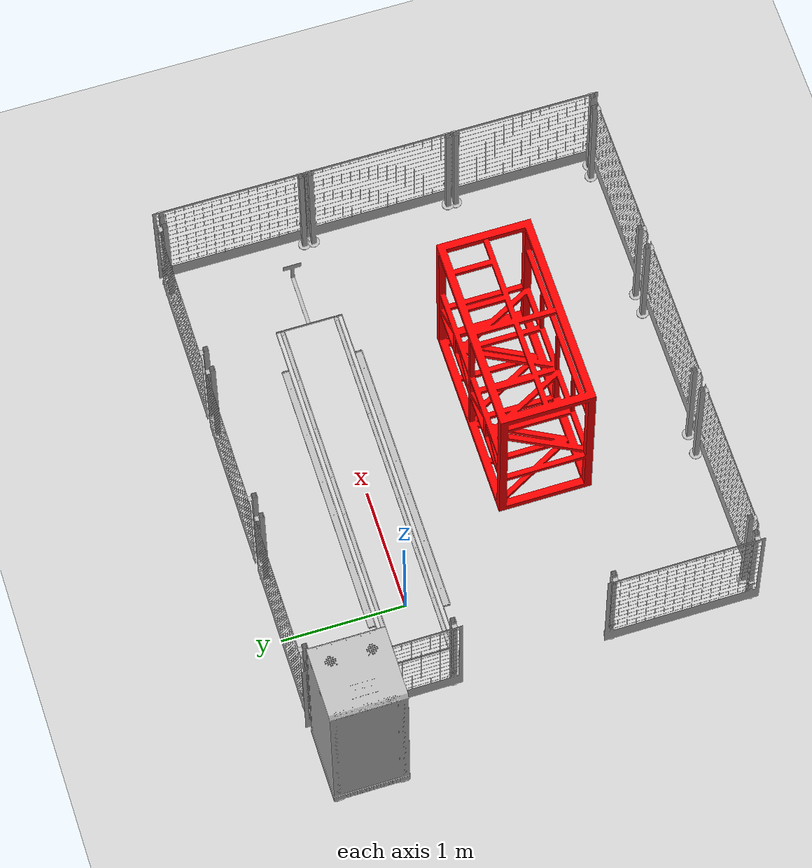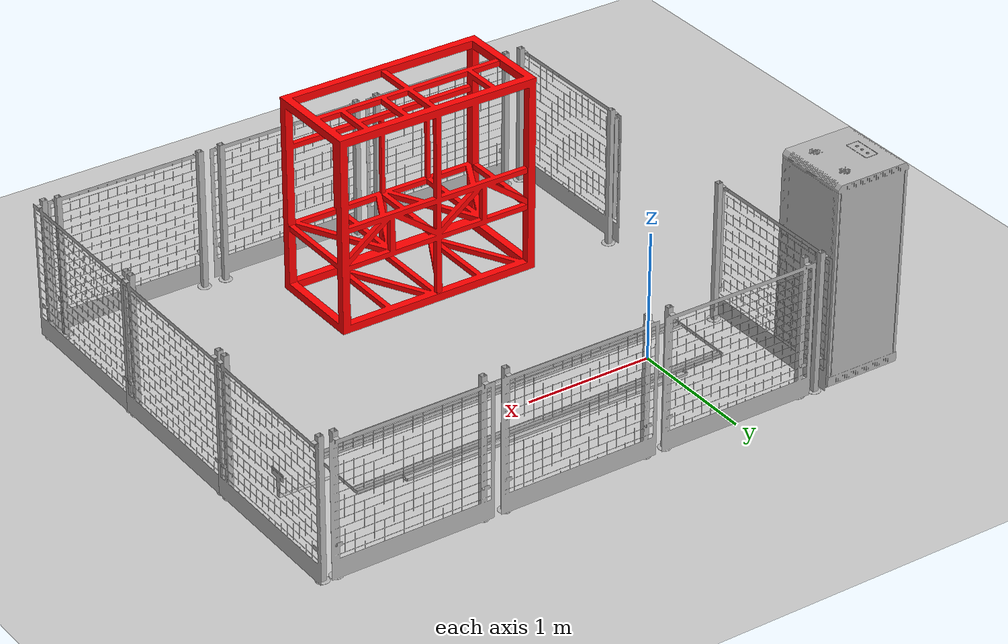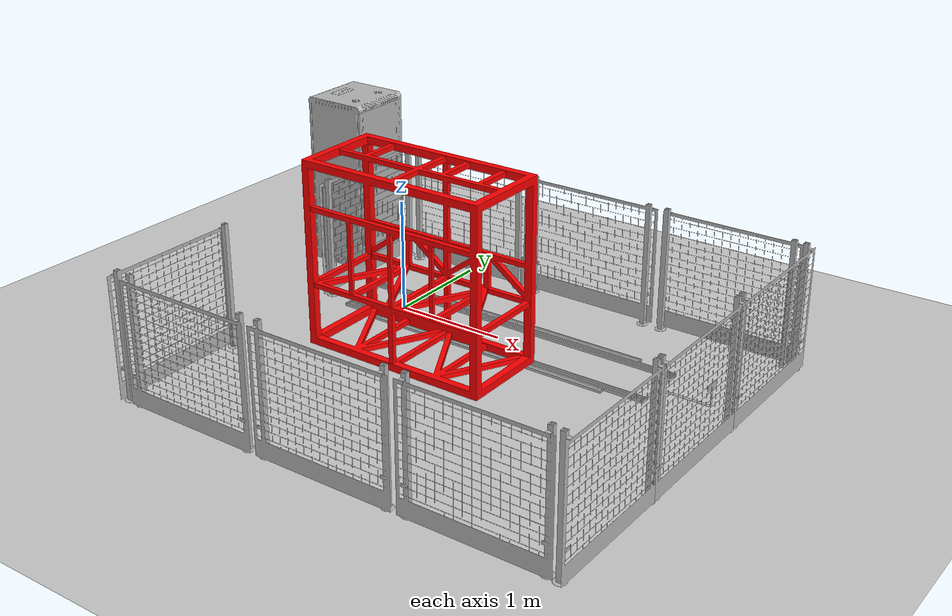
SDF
<sdf version="1.7">
 <world name="default">
  <light name="sun" type="directional">
   <pose>0 0 10 0 -0 0</pose>
   <diffuse>0.8 0.8 0.8 1</diffuse>
   <specular>0.2 0.2 0.2 1</specular>
   <attenuation>
    <range>1000</range>
    <constant>0.9</constant>
    <linear>0.01</linear>
    <quadratic>0.001</quadratic>
   </attenuation>
   <direction>-0.5 0.1 -0.9</direction>
   <spot><inner_angle>0</inner_angle><outer_angle>0</outer_angle><falloff>0</falloff></spot>
  </light>
  <model name="ground_plane">
   <static>1</static>
   <link name="link">
    <collision name="collision">
     <geometry><plane><normal>0 0 1</normal><size>100 100</size></plane></geometry>
     <surface>
      <contact><collide_bitmask>65535</collide_bitmask></contact>
      <friction><ode><mu>100</mu><mu2>50</mu2></ode></friction>
     </surface>
    </collision>
    <visual name="visual">
     <cast_shadows>0</cast_shadows>
     <geometry><plane><normal>0 0 1</normal><size>100 100</size></plane></geometry>
     <material>
      <script><uri>file://media/materials/scripts/gazebo.material</uri><name>Gazebo/Grey</name></script>
     </material>
    </visual>
   </link>
  </model>
  <gravity>0 0 -9.8</gravity>
  <magnetic_field>6e-06 2.3e-05 -4.2e-05</magnetic_field>
  <atmosphere type="adiabatic"/>
  <physics type="ode">
   <max_step_size>0.001</max_step_size>
   <real_time_factor>1</real_time_factor>
   <real_time_update_rate>1000</real_time_update_rate>
  </physics>
  <scene><ambient>0.4 0.4 0.4 1</ambient><background>0.7 0.7 0.7 1</background><shadows>1</shadows></scene>
  <spherical_coordinates>
   <surface_model>EARTH_WGS84</surface_model>
   <latitude_deg>0</latitude_deg>
   <longitude_deg>0</longitude_deg>
   <elevation>0</elevation>
   <heading_deg>0</heading_deg>
  </spherical_coordinates>
  <model name="ifarlab_ray">
   <link name="link_0">
    <inertial>
     <mass>1</mass>
     <inertia>
      <ixx>0.166667</ixx>
      <ixy>0</ixy>
      <ixz>0</ixz>
      <iyy>0.166667</iyy>
      <iyz>0</iyz>
      <izz>0.166667</izz>
     </inertia>
    </inertial>
    <visual name="visual">
     <pose>0.4 -1.28 0 0 -0 0</pose>
     <geometry>
      <mesh><uri>model://ifarlab_ray/model/ifarlab_ray.stl</uri><scale>0.001 0.001 0.001</scale></mesh>
     </geometry>
    </visual>
    <collision name="collision">
     <pose>0.4 -1.28 0 0 -0 0</pose>
     <geometry>
      <mesh><uri>model://ifarlab_ray/model/ifarlab_ray.stl</uri><scale>0.001 0.001 0.001</scale></mesh>
     </geometry>
     <surface>
      <friction>
       <ode><mu>1</mu><mu2>1</mu2><fdir1>0 0 0</fdir1><slip1>0</slip1><slip2>0</slip2></ode>
       <torsional>
        <coefficient>1</coefficient>
        <patch_radius>0</patch_radius>
        <surface_radius>0</surface_radius>
        <use_patch_radius>1</use_patch_radius>
        <ode><slip>0</slip></ode>
       </torsional>
      </friction>
      <bounce><restitution_coefficient>0</restitution_coefficient><threshold>1e+06</threshold></bounce>
      <contact>
       <collide_without_contact>0</collide_without_contact>
       <collide_without_contact_bitmask>1</collide_without_contact_bitmask>
       <collide_bitmask>1</collide_bitmask>
       <ode>
        <soft_cfm>0</soft_cfm>
        <soft_erp>0.2</soft_erp>
        <kp>1e+13</kp>
        <kd>1</kd>
        <max_vel>0.01</max_vel>
        <min_depth>0</min_depth>
       </ode>
       <bullet>
        <split_impulse>1</split_impulse>
        <split_impulse_penetration_threshold>-0.01</split_impulse_penetration_threshold>
        <soft_cfm>0</soft_cfm>
        <soft_erp>0.2</soft_erp>
        <kp>1e+13</kp>
        <kd>1</kd>
       </bullet>
      </contact>
     </surface>
    </collision>
   </link>
   <static>1</static>
   <pose>1.28 5e-06 -0 0 -0 1.5708</pose>
  </model>
  <model name="light_curtain">
   <link name="link_0">
    <inertial>
     <mass>1</mass>
     <inertia>
      <ixx>0.166667</ixx>
      <ixy>0</ixy>
      <ixz>0</ixz>
      <iyy>0.166667</iyy>
      <iyz>0</iyz>
      <izz>0.166667</izz>
     </inertia>
    </inertial>
    <visual name="visual">
     <pose>-0.92725 1.7723 0 0 -0 0</pose>
     <geometry>
      <mesh><uri>model://light_curtain/model/light_curtain.stl</uri><scale>0.001 0.001 0.001</scale></mesh>
     </geometry>
    </visual>
    <collision name="collision">
     <pose>-0.92725 1.7723 0 0 -0 0</pose>
     <geometry>
      <mesh><uri>model://light_curtain/model/light_curtain.stl</uri><scale>0.001 0.001 0.001</scale></mesh>
     </geometry>
     <surface>
      <friction>
       <ode><mu>1</mu><mu2>1</mu2><fdir1>0 0 0</fdir1><slip1>0</slip1><slip2>0</slip2></ode>
       <torsional>
        <coefficient>1</coefficient>
        <patch_radius>0</patch_radius>
        <surface_radius>0</surface_radius>
        <use_patch_radius>1</use_patch_radius>
        <ode><slip>0</slip></ode>
       </torsional>
      </friction>
      <bounce><restitution_coefficient>0</restitution_coefficient><threshold>1e+06</threshold></bounce>
      <contact>
       <collide_without_contact>0</collide_without_contact>
       <collide_without_contact_bitmask>1</collide_without_contact_bitmask>
       <collide_bitmask>1</collide_bitmask>
       <ode>
        <soft_cfm>0</soft_cfm>
        <soft_erp>0.2</soft_erp>
        <kp>1e+13</kp>
        <kd>1</kd>
        <max_vel>0.01</max_vel>
        <min_depth>0</min_depth>
       </ode>
       <bullet>
        <split_impulse>1</split_impulse>
        <split_impulse_penetration_threshold>-0.01</split_impulse_penetration_threshold>
        <soft_cfm>0</soft_cfm>
        <soft_erp>0.2</soft_erp>
        <kp>1e+13</kp>
        <kd>1</kd>
       </bullet>
      </contact>
     </surface>
    </collision>
    <sensor name="ir" type="ray">
     <pose>-0.605 0 0.22 0 -0 0</pose>
     <ray>
      <scan>
       <horizontal>
        <min_angle>-0.001</min_angle>
        <max_angle>0.001</max_angle>
        <samples>640</samples>
        <resolution>1</resolution>
       </horizontal>
       <vertical><samples>1</samples><min_angle>0</min_angle><max_angle>0</max_angle></vertical>
      </scan>
      <range><min>0.001</min><max>1.213</max></range>
     </ray>
     <plugin name="gazebo_ros_range" filename="libgazebo_ros_range.so">
      <topicName>ir</topicName>
      <frameName>link</frameName>
      <frameId>link</frameId>
      <radiation>infrared</radiation>
     </plugin>
     <always_on>1</always_on>
     <update_rate>10</update_rate>
     <visualize>1</visualize>
    </sensor>
    <sensor name="ir1" type="ray">
     <pose>-0.605 0 0.32 0 -0 0</pose>
     <ray>
      <scan>
       <horizontal>
        <min_angle>-0.001</min_angle>
        <max_angle>0.001</max_angle>
        <samples>640</samples>
        <resolution>1</resolution>
       </horizontal>
       <vertical><samples>1</samples><min_angle>0</min_angle><max_angle>0</max_angle></vertical>
      </scan>
      <range><min>0.001</min><max>1.213</max><resolution>0.001</resolution></range>
     </ray>
     <plugin name="gazebo_ros_range" filename="libgazebo_ros_range.so">
      <topicName>ir1</topicName>
      <frameName>link</frameName>
      <frameId>link</frameId>
      <radiation>infrared</radiation>
     </plugin>
     <always_on>1</always_on>
     <update_rate>10</update_rate>
     <visualize>1</visualize>
    </sensor>
    <sensor name="ir2" type="ray">
     <pose>-0.605 0 0.42 0 -0 0</pose>
     <ray>
      <scan>
       <horizontal>
        <min_angle>-0.001</min_angle>
        <max_angle>0.001</max_angle>
        <samples>640</samples>
        <resolution>1</resolution>
       </horizontal>
       <vertical><samples>1</samples><min_angle>0</min_angle><max_angle>0</max_angle></vertical>
      </scan>
      <range><min>0.001</min><max>1.213</max><resolution>0.001</resolution></range>
     </ray>
     <plugin name="gazebo_ros_range" filename="libgazebo_ros_range.so">
      <topicName>ir2</topicName>
      <frameName>link</frameName>
      <frameId>link</frameId>
      <radiation>infrared</radiation>
     </plugin>
     <always_on>1</always_on>
     <update_rate>10</update_rate>
     <visualize>1</visualize>
    </sensor>
    <sensor name="ir3" type="ray">
     <pose>-0.605 0 0.52 0 -0 0</pose>
     <ray>
      <scan>
       <horizontal>
        <samples>320</samples>
        <resolution>1</resolution>
        <min_angle>-0.001</min_angle>
        <max_angle>0.001</max_angle>
       </horizontal>
       <vertical><samples>1</samples><min_angle>0</min_angle><max_angle>0</max_angle></vertical>
      </scan>
      <range><min>0.001</min><max>1.213</max><resolution>0.001</resolution></range>
     </ray>
     <plugin name="gazebo_ros_range" filename="libgazebo_ros_range.so">
      <topicName>ir3</topicName>
      <frameName>link</frameName>
      <frameId>link</frameId>
      <radiation>infrared</radiation>
     </plugin>
     <always_on>1</always_on>
     <update_rate>10</update_rate>
     <visualize>1</visualize>
    </sensor>
    <sensor name="ir4" type="ray">
     <pose>-0.605 0 0.62 0 -0 0</pose>
     <ray>
      <scan>
       <horizontal>
        <min_angle>-0.001</min_angle>
        <max_angle>0.001</max_angle>
        <samples>640</samples>
        <resolution>1</resolution>
       </horizontal>
       <vertical><samples>1</samples><min_angle>0</min_angle><max_angle>0</max_angle></vertical>
      </scan>
      <range><min>0.001</min><max>1.213</max><resolution>0.001</resolution></range>
     </ray>
     <plugin name="gazebo_ros_range" filename="libgazebo_ros_range.so">
      <topicName>ir4</topicName>
      <frameName>link</frameName>
      <frameId>link</frameId>
      <radiation>infrared</radiation>
     </plugin>
     <always_on>1</always_on>
     <update_rate>10</update_rate>
     <visualize>1</visualize>
    </sensor>
    <sensor name="ir5" type="ray">
     <pose>-0.605 0 0.72 0 -0 0</pose>
     <ray>
      <scan>
       <horizontal>
        <min_angle>-0.001</min_angle>
        <max_angle>0.001</max_angle>
        <samples>640</samples>
        <resolution>1</resolution>
       </horizontal>
       <vertical><samples>1</samples><min_angle>0</min_angle><max_angle>0</max_angle></vertical>
      </scan>
      <range><min>0.001</min><max>1.213</max><resolution>0.001</resolution></range>
     </ray>
     <plugin name="gazebo_ros_range" filename="libgazebo_ros_range.so">
      <topicName>ir5</topicName>
      <frameName>link</frameName>
      <frameId>link</frameId>
      <radiation>infrared</radiation>
     </plugin>
     <always_on>1</always_on>
     <update_rate>10</update_rate>
     <visualize>1</visualize>
    </sensor>
    <sensor name="ir6" type="ray">
     <pose>-0.605 0 0.82 0 -0 0</pose>
     <ray>
      <scan>
       <horizontal>
        <min_angle>-0.001</min_angle>
        <max_angle>0.001</max_angle>
        <samples>640</samples>
        <resolution>1</resolution>
       </horizontal>
       <vertical><samples>1</samples><min_angle>0</min_angle><max_angle>0</max_angle></vertical>
      </scan>
      <range><min>0.001</min><max>1.213</max><resolution>0.001</resolution></range>
     </ray>
     <plugin name="gazebo_ros_range" filename="libgazebo_ros_range.so">
      <topicName>ir6</topicName>
      <frameName>link</frameName>
      <frameId>link</frameId>
      <radiation>infrared</radiation>
     </plugin>
     <always_on>1</always_on>
     <update_rate>10</update_rate>
     <visualize>1</visualize>
    </sensor>
    <sensor name="ir7" type="ray">
     <pose>-0.605 0 0.92 0 -0 0</pose>
     <ray>
      <scan>
       <horizontal>
        <min_angle>-0.001</min_angle>
        <max_angle>0.001</max_angle>
        <samples>640</samples>
        <resolution>1</resolution>
       </horizontal>
       <vertical><samples>1</samples><min_angle>0</min_angle><max_angle>0</max_angle></vertical>
      </scan>
      <range><min>0.001</min><max>1.213</max><resolution>0.001</resolution></range>
     </ray>
     <plugin name="gazebo_ros_range" filename="libgazebo_ros_range.so">
      <topicName>ir7</topicName>
      <frameName>link</frameName>
      <frameId>link</frameId>
      <radiation>infrared</radiation>
     </plugin>
     <always_on>1</always_on>
     <update_rate>10</update_rate>
     <visualize>1</visualize>
    </sensor>
    <sensor name="ir8" type="ray">
     <pose>-0.605 0 1.02 0 -0 0</pose>
     <ray>
      <scan>
       <horizontal>
        <min_angle>-0.001</min_angle>
        <max_angle>0.001</max_angle>
        <samples>640</samples>
        <resolution>1</resolution>
       </horizontal>
       <vertical><samples>1</samples><min_angle>0</min_angle><max_angle>0</max_angle></vertical>
      </scan>
      <range><min>0.001</min><max>1.213</max><resolution>0.001</resolution></range>
     </ray>
     <plugin name="gazebo_ros_range" filename="libgazebo_ros_range.so">
      <topicName>ir8</topicName>
      <frameName>link</frameName>
      <frameId>link</frameId>
      <radiation>infrared</radiation>
     </plugin>
     <always_on>1</always_on>
     <update_rate>10</update_rate>
     <visualize>1</visualize>
    </sensor>
   </link>
   <static>1</static>
   <pose>-0.726743 -0.78522 0 0 0 -1.5708</pose>
  </model>
  <model name="kabinet">
   <link name="link_0">
    <inertial>
     <mass>1</mass>
     <inertia>
      <ixx>0.166667</ixx>
      <ixy>0</ixy>
      <ixz>0</ixz>
      <iyy>0.166667</iyy>
      <iyz>0</iyz>
      <izz>0.166667</izz>
     </inertia>
    </inertial>
    <visual name="visual">
     <pose>0.7 -3.7 0 0 -0 0</pose>
     <geometry>
      <mesh><uri>model://kabinet/model/Kabinet.stl</uri><scale>0.001 0.001 0.00125</scale></mesh>
     </geometry>
    </visual>
    <collision name="collision">
     <pose>0.7 3.7 0 0 -0 0</pose>
     <geometry>
      <mesh><uri>model://kabinet/model/Kabinet.stl</uri><scale>0.001 0.001 0.00125</scale></mesh>
     </geometry>
     <surface>
      <friction>
       <ode><mu>1</mu><mu2>1</mu2><fdir1>0 0 0</fdir1><slip1>0</slip1><slip2>0</slip2></ode>
       <torsional>
        <coefficient>1</coefficient>
        <patch_radius>0</patch_radius>
        <surface_radius>0</surface_radius>
        <use_patch_radius>1</use_patch_radius>
        <ode><slip>0</slip></ode>
       </torsional>
      </friction>
      <bounce><restitution_coefficient>0</restitution_coefficient><threshold>1e+06</threshold></bounce>
      <contact>
       <collide_without_contact>0</collide_without_contact>
       <collide_without_contact_bitmask>1</collide_without_contact_bitmask>
       <collide_bitmask>1</collide_bitmask>
       <ode>
        <soft_cfm>0</soft_cfm>
        <soft_erp>0.2</soft_erp>
        <kp>1e+13</kp>
        <kd>1</kd>
        <max_vel>0.01</max_vel>
        <min_depth>0</min_depth>
       </ode>
       <bullet>
        <split_impulse>1</split_impulse>
        <split_impulse_penetration_threshold>-0.01</split_impulse_penetration_threshold>
        <soft_cfm>0</soft_cfm>
        <soft_erp>0.2</soft_erp>
        <kp>1e+13</kp>
        <kd>1</kd>
       </bullet>
      </contact>
     </surface>
    </collision>
   </link>
   <static>1</static>
   <pose>-1.1 0.742257 0 0 -0 3.14159</pose>
  </model>
  <model name="barrier">
   <link name="link_0">
    <inertial>
     <mass>1</mass>
     <inertia>
      <ixx>0.166667</ixx>
      <ixy>0</ixy>
      <ixz>0</ixz>
      <iyy>0.166667</iyy>
      <iyz>0</iyz>
      <izz>0.166667</izz>
     </inertia>
    </inertial>
    <visual name="visual">
     <pose>1.085 0.4 0 0 -0 0</pose>
     <geometry><mesh><uri>model://barrier/model/barrier.stl</uri><scale>0.001 0.001 0.001</scale></mesh></geometry>
    </visual>
    <collision name="collision">
     <pose>1.085 0.4 0 0 -0 0</pose>
     <geometry><mesh><uri>model://barrier/model/barrier.stl</uri><scale>0.001 0.001 0.001</scale></mesh></geometry>
     <surface>
      <friction>
       <ode><mu>1</mu><mu2>1</mu2><fdir1>0 0 0</fdir1><slip1>0</slip1><slip2>0</slip2></ode>
       <torsional>
        <coefficient>1</coefficient>
        <patch_radius>0</patch_radius>
        <surface_radius>0</surface_radius>
        <use_patch_radius>1</use_patch_radius>
        <ode><slip>0</slip></ode>
       </torsional>
      </friction>
      <bounce><restitution_coefficient>0</restitution_coefficient><threshold>1e+06</threshold></bounce>
      <contact>
       <collide_without_contact>0</collide_without_contact>
       <collide_without_contact_bitmask>1</collide_without_contact_bitmask>
       <collide_bitmask>1</collide_bitmask>
       <ode>
        <soft_cfm>0</soft_cfm>
        <soft_erp>0.2</soft_erp>
        <kp>1e+13</kp>
        <kd>1</kd>
        <max_vel>0.01</max_vel>
        <min_depth>0</min_depth>
       </ode>
       <bullet>
        <split_impulse>1</split_impulse>
        <split_impulse_penetration_threshold>-0.01</split_impulse_penetration_threshold>
        <soft_cfm>0</soft_cfm>
        <soft_erp>0.2</soft_erp>
        <kp>1e+13</kp>
        <kd>1</kd>
       </bullet>
      </contact>
     </surface>
    </collision>
   </link>
   <static>1</static>
   <pose>3.26 0.388652 0 0 -0 1.5708</pose>
  </model>
  <model name="barrier_0">
   <link name="link_0">
    <inertial>
     <mass>1</mass>
     <inertia>
      <ixx>0.166667</ixx>
      <ixy>0</ixy>
      <ixz>0</ixz>
      <iyy>0.166667</iyy>
      <iyz>0</iyz>
      <izz>0.166667</izz>
     </inertia>
    </inertial>
    <visual name="visual">
     <pose>1.085 0.4 0 0 -0 0</pose>
     <geometry><mesh><uri>model://barrier/model/barrier.stl</uri><scale>0.001 0.001 0.001</scale></mesh></geometry>
    </visual>
    <collision name="collision">
     <pose>1.085 0.4 0 0 -0 0</pose>
     <geometry><mesh><uri>model://barrier/model/barrier.stl</uri><scale>0.001 0.001 0.001</scale></mesh></geometry>
     <surface>
      <friction>
       <ode><mu>1</mu><mu2>1</mu2><fdir1>0 0 0</fdir1><slip1>0</slip1><slip2>0</slip2></ode>
       <torsional>
        <coefficient>1</coefficient>
        <patch_radius>0</patch_radius>
        <surface_radius>0</surface_radius>
        <use_patch_radius>1</use_patch_radius>
        <ode><slip>0</slip></ode>
       </torsional>
      </friction>
      <bounce><restitution_coefficient>0</restitution_coefficient><threshold>1e+06</threshold></bounce>
      <contact>
       <collide_without_contact>0</collide_without_contact>
       <collide_without_contact_bitmask>1</collide_without_contact_bitmask>
       <collide_bitmask>1</collide_bitmask>
       <ode>
        <soft_cfm>0</soft_cfm>
        <soft_erp>0.2</soft_erp>
        <kp>1e+13</kp>
        <kd>1</kd>
        <max_vel>0.01</max_vel>
        <min_depth>0</min_depth>
       </ode>
       <bullet>
        <split_impulse>1</split_impulse>
        <split_impulse_penetration_threshold>-0.01</split_impulse_penetration_threshold>
        <soft_cfm>0</soft_cfm>
        <soft_erp>0.2</soft_erp>
        <kp>1e+13</kp>
        <kd>1</kd>
       </bullet>
      </contact>
     </surface>
    </collision>
   </link>
   <static>1</static>
   <pose>3.26 -0.811401 0 0 -0 1.5708</pose>
  </model>
  <model name="barrier_1">
   <link name="link_0">
    <inertial>
     <mass>1</mass>
     <inertia>
      <ixx>0.166667</ixx>
      <ixy>0</ixy>
      <ixz>0</ixz>
      <iyy>0.166667</iyy>
      <iyz>0</iyz>
      <izz>0.166667</izz>
     </inertia>
    </inertial>
    <visual name="visual">
     <pose>1.085 0.4 0 0 -0 0</pose>
     <geometry><mesh><uri>model://barrier/model/barrier.stl</uri><scale>0.001 0.001 0.001</scale></mesh></geometry>
    </visual>
    <collision name="collision">
     <pose>1.085 0.4 0 0 -0 0</pose>
     <geometry><mesh><uri>model://barrier/model/barrier.stl</uri><scale>0.001 0.001 0.001</scale></mesh></geometry>
     <surface>
      <friction>
       <ode><mu>1</mu><mu2>1</mu2><fdir1>0 0 0</fdir1><slip1>0</slip1><slip2>0</slip2></ode>
       <torsional>
        <coefficient>1</coefficient>
        <patch_radius>0</patch_radius>
        <surface_radius>0</surface_radius>
        <use_patch_radius>1</use_patch_radius>
        <ode><slip>0</slip></ode>
       </torsional>
      </friction>
      <bounce><restitution_coefficient>0</restitution_coefficient><threshold>1e+06</threshold></bounce>
      <contact>
       <collide_without_contact>0</collide_without_contact>
       <collide_without_contact_bitmask>1</collide_without_contact_bitmask>
       <collide_bitmask>1</collide_bitmask>
       <ode>
        <soft_cfm>0</soft_cfm>
        <soft_erp>0.2</soft_erp>
        <kp>1e+13</kp>
        <kd>1</kd>
        <max_vel>0.01</max_vel>
        <min_depth>0</min_depth>
       </ode>
       <bullet>
        <split_impulse>1</split_impulse>
        <split_impulse_penetration_threshold>-0.01</split_impulse_penetration_threshold>
        <soft_cfm>0</soft_cfm>
        <soft_erp>0.2</soft_erp>
        <kp>1e+13</kp>
        <kd>1</kd>
       </bullet>
      </contact>
     </surface>
    </collision>
   </link>
   <static>1</static>
   <pose>3.26 -2 0 0 -0 1.5708</pose>
  </model>
  <model name="barrier_2">
   <link name="link_0">
    <inertial>
     <mass>1</mass>
     <inertia>
      <ixx>0.166667</ixx>
      <ixy>0</ixy>
      <ixz>0</ixz>
      <iyy>0.166667</iyy>
      <iyz>0</iyz>
      <izz>0.166667</izz>
     </inertia>
    </inertial>
    <visual name="visual">
     <pose>1.085 0.4 0 0 -0 0</pose>
     <geometry><mesh><uri>model://barrier/model/barrier.stl</uri><scale>0.001 0.001 0.001</scale></mesh></geometry>
    </visual>
    <collision name="collision">
     <pose>1.085 0.4 0 0 -0 0</pose>
     <geometry><mesh><uri>model://barrier/model/barrier.stl</uri><scale>0.001 0.001 0.001</scale></mesh></geometry>
     <surface>
      <friction>
       <ode><mu>1</mu><mu2>1</mu2><fdir1>0 0 0</fdir1><slip1>0</slip1><slip2>0</slip2></ode>
       <torsional>
        <coefficient>1</coefficient>
        <patch_radius>0</patch_radius>
        <surface_radius>0</surface_radius>
        <use_patch_radius>1</use_patch_radius>
        <ode><slip>0</slip></ode>
       </torsional>
      </friction>
      <bounce><restitution_coefficient>0</restitution_coefficient><threshold>1e+06</threshold></bounce>
      <contact>
       <collide_without_contact>0</collide_without_contact>
       <collide_without_contact_bitmask>1</collide_without_contact_bitmask>
       <collide_bitmask>1</collide_bitmask>
       <ode>
        <soft_cfm>0</soft_cfm>
        <soft_erp>0.2</soft_erp>
        <kp>1e+13</kp>
        <kd>1</kd>
        <max_vel>0.01</max_vel>
        <min_depth>0</min_depth>
       </ode>
       <bullet>
        <split_impulse>1</split_impulse>
        <split_impulse_penetration_threshold>-0.01</split_impulse_penetration_threshold>
        <soft_cfm>0</soft_cfm>
        <soft_erp>0.2</soft_erp>
        <kp>1e+13</kp>
        <kd>1</kd>
       </bullet>
      </contact>
     </surface>
    </collision>
   </link>
   <static>1</static>
   <pose>-0.69 0.404037 0 0 0 -1.5708</pose>
  </model>
  <model name="barrier_3">
   <link name="link_0">
    <inertial>
     <mass>1</mass>
     <inertia>
      <ixx>0.166667</ixx>
      <ixy>0</ixy>
      <ixz>0</ixz>
      <iyy>0.166667</iyy>
      <iyz>0</iyz>
      <izz>0.166667</izz>
     </inertia>
    </inertial>
    <visual name="visual">
     <pose>1.085 0.4 0 0 -0 0</pose>
     <geometry><mesh><uri>model://barrier/model/barrier.stl</uri><scale>0.001 0.001 0.001</scale></mesh></geometry>
    </visual>
    <collision name="collision">
     <pose>1.085 0.4 0 0 -0 0</pose>
     <geometry><mesh><uri>model://barrier/model/barrier.stl</uri><scale>0.001 0.001 0.001</scale></mesh></geometry>
     <surface>
      <friction>
       <ode><mu>1</mu><mu2>1</mu2><fdir1>0 0 0</fdir1><slip1>0</slip1><slip2>0</slip2></ode>
       <torsional>
        <coefficient>1</coefficient>
        <patch_radius>0</patch_radius>
        <surface_radius>0</surface_radius>
        <use_patch_radius>1</use_patch_radius>
        <ode><slip>0</slip></ode>
       </torsional>
      </friction>
      <bounce><restitution_coefficient>0</restitution_coefficient><threshold>1e+06</threshold></bounce>
      <contact>
       <collide_without_contact>0</collide_without_contact>
       <collide_without_contact_bitmask>1</collide_without_contact_bitmask>
       <collide_bitmask>1</collide_bitmask>
       <ode>
        <soft_cfm>0</soft_cfm>
        <soft_erp>0.2</soft_erp>
        <kp>1e+13</kp>
        <kd>1</kd>
        <max_vel>0.01</max_vel>
        <min_depth>0</min_depth>
       </ode>
       <bullet>
        <split_impulse>1</split_impulse>
        <split_impulse_penetration_threshold>-0.01</split_impulse_penetration_threshold>
        <soft_cfm>0</soft_cfm>
        <soft_erp>0.2</soft_erp>
        <kp>1e+13</kp>
        <kd>1</kd>
       </bullet>
      </contact>
     </surface>
    </collision>
   </link>
   <static>1</static>
   <pose>2.6 0.95 0 0 -0 3.14159</pose>
  </model>
  <model name="barrier_3_clone">
   <link name="link_0">
    <inertial>
     <mass>1</mass>
     <inertia>
      <ixx>0.166667</ixx>
      <ixy>0</ixy>
      <ixz>0</ixz>
      <iyy>0.166667</iyy>
      <iyz>0</iyz>
      <izz>0.166667</izz>
     </inertia>
    </inertial>
    <visual name="visual">
     <pose>1.085 0.4 0 0 -0 0</pose>
     <geometry><mesh><uri>model://barrier/model/barrier.stl</uri><scale>0.001 0.001 0.001</scale></mesh></geometry>
    </visual>
    <collision name="collision">
     <pose>1.085 0.4 0 0 -0 0</pose>
     <geometry><mesh><uri>model://barrier/model/barrier.stl</uri><scale>0.001 0.001 0.001</scale></mesh></geometry>
     <surface>
      <friction>
       <ode><mu>1</mu><mu2>1</mu2><fdir1>0 0 0</fdir1><slip1>0</slip1><slip2>0</slip2></ode>
       <torsional>
        <coefficient>1</coefficient>
        <patch_radius>0</patch_radius>
        <surface_radius>0</surface_radius>
        <use_patch_radius>1</use_patch_radius>
        <ode><slip>0</slip></ode>
       </torsional>
      </friction>
      <bounce><restitution_coefficient>0</restitution_coefficient><threshold>1e+06</threshold></bounce>
      <contact>
       <collide_without_contact>0</collide_without_contact>
       <collide_without_contact_bitmask>1</collide_without_contact_bitmask>
       <collide_bitmask>1</collide_bitmask>
       <ode>
        <soft_cfm>0</soft_cfm>
        <soft_erp>0.2</soft_erp>
        <kp>1e+13</kp>
        <kd>1</kd>
        <max_vel>0.01</max_vel>
        <min_depth>0</min_depth>
       </ode>
       <bullet>
        <split_impulse>1</split_impulse>
        <split_impulse_penetration_threshold>-0.01</split_impulse_penetration_threshold>
        <soft_cfm>0</soft_cfm>
        <soft_erp>0.2</soft_erp>
        <kp>1e+13</kp>
        <kd>1</kd>
       </bullet>
      </contact>
     </surface>
    </collision>
   </link>
   <static>1</static>
   <pose>1.3 0.95 0 0 -0 3.14159</pose>
  </model>
  <model name="barrier_3_clone_0">
   <link name="link_0">
    <inertial>
     <mass>1</mass>
     <inertia>
      <ixx>0.166667</ixx>
      <ixy>0</ixy>
      <ixz>0</ixz>
      <iyy>0.166667</iyy>
      <iyz>0</iyz>
      <izz>0.166667</izz>
     </inertia>
    </inertial>
    <visual name="visual">
     <pose>1.085 0.4 0 0 -0 0</pose>
     <geometry><mesh><uri>model://barrier/model/barrier.stl</uri><scale>0.001 0.001 0.001</scale></mesh></geometry>
    </visual>
    <collision name="collision">
     <pose>1.085 0.4 0 0 -0 0</pose>
     <geometry><mesh><uri>model://barrier/model/barrier.stl</uri><scale>0.001 0.001 0.001</scale></mesh></geometry>
     <surface>
      <friction>
       <ode><mu>1</mu><mu2>1</mu2><fdir1>0 0 0</fdir1><slip1>0</slip1><slip2>0</slip2></ode>
       <torsional>
        <coefficient>1</coefficient>
        <patch_radius>0</patch_radius>
        <surface_radius>0</surface_radius>
        <use_patch_radius>1</use_patch_radius>
        <ode><slip>0</slip></ode>
       </torsional>
      </friction>
      <bounce><restitution_coefficient>0</restitution_coefficient><threshold>1e+06</threshold></bounce>
      <contact>
       <collide_without_contact>0</collide_without_contact>
       <collide_without_contact_bitmask>1</collide_without_contact_bitmask>
       <collide_bitmask>1</collide_bitmask>
       <ode>
        <soft_cfm>0</soft_cfm>
        <soft_erp>0.2</soft_erp>
        <kp>1e+13</kp>
        <kd>1</kd>
        <max_vel>0.01</max_vel>
        <min_depth>0</min_depth>
       </ode>
       <bullet>
        <split_impulse>1</split_impulse>
        <split_impulse_penetration_threshold>-0.01</split_impulse_penetration_threshold>
        <soft_cfm>0</soft_cfm>
        <soft_erp>0.2</soft_erp>
        <kp>1e+13</kp>
        <kd>1</kd>
       </bullet>
      </contact>
     </surface>
    </collision>
   </link>
   <static>1</static>
   <pose>0 0.947469 0 0 -0 3.14158</pose>
  </model>
  <model name="barrier_4">
   <link name="link_0">
    <inertial>
     <mass>1</mass>
     <inertia>
      <ixx>0.166667</ixx>
      <ixy>0</ixy>
      <ixz>0</ixz>
      <iyy>0.166667</iyy>
      <iyz>0</iyz>
      <izz>0.166667</izz>
     </inertia>
    </inertial>
    <visual name="visual">
     <pose>1.085 0.4 0 0 -0 0</pose>
     <geometry><mesh><uri>model://barrier/model/barrier.stl</uri><scale>0.001 0.001 0.001</scale></mesh></geometry>
    </visual>
    <collision name="collision">
     <pose>1.085 0.4 0 0 -0 0</pose>
     <geometry><mesh><uri>model://barrier/model/barrier.stl</uri><scale>0.001 0.001 0.001</scale></mesh></geometry>
     <surface>
      <friction>
       <ode><mu>1</mu><mu2>1</mu2><fdir1>0 0 0</fdir1><slip1>0</slip1><slip2>0</slip2></ode>
       <torsional>
        <coefficient>1</coefficient>
        <patch_radius>0</patch_radius>
        <surface_radius>0</surface_radius>
        <use_patch_radius>1</use_patch_radius>
        <ode><slip>0</slip></ode>
       </torsional>
      </friction>
      <bounce><restitution_coefficient>0</restitution_coefficient><threshold>1e+06</threshold></bounce>
      <contact>
       <collide_without_contact>0</collide_without_contact>
       <collide_without_contact_bitmask>1</collide_without_contact_bitmask>
       <collide_bitmask>1</collide_bitmask>
       <ode>
        <soft_cfm>0</soft_cfm>
        <soft_erp>0.2</soft_erp>
        <kp>1e+13</kp>
        <kd>1</kd>
        <max_vel>0.01</max_vel>
        <min_depth>0</min_depth>
       </ode>
       <bullet>
        <split_impulse>1</split_impulse>
        <split_impulse_penetration_threshold>-0.01</split_impulse_penetration_threshold>
        <soft_cfm>0</soft_cfm>
        <soft_erp>0.2</soft_erp>
        <kp>1e+13</kp>
        <kd>1</kd>
       </bullet>
      </contact>
     </surface>
    </collision>
   </link>
   <static>1</static>
   <pose>0 -2.54 0 0 -0 0</pose>
  </model>
  <model name="barrier_4_clone">
   <link name="link_0">
    <inertial>
     <mass>1</mass>
     <inertia>
      <ixx>0.166667</ixx>
      <ixy>0</ixy>
      <ixz>0</ixz>
      <iyy>0.166667</iyy>
      <iyz>0</iyz>
      <izz>0.166667</izz>
     </inertia>
    </inertial>
    <visual name="visual">
     <pose>1.085 0.4 0 0 -0 0</pose>
     <geometry><mesh><uri>model://barrier/model/barrier.stl</uri><scale>0.001 0.001 0.001</scale></mesh></geometry>
    </visual>
    <collision name="collision">
     <pose>1.085 0.4 0 0 -0 0</pose>
     <geometry><mesh><uri>model://barrier/model/barrier.stl</uri><scale>0.001 0.001 0.001</scale></mesh></geometry>
     <surface>
      <friction>
       <ode><mu>1</mu><mu2>1</mu2><fdir1>0 0 0</fdir1><slip1>0</slip1><slip2>0</slip2></ode>
       <torsional>
        <coefficient>1</coefficient>
        <patch_radius>0</patch_radius>
        <surface_radius>0</surface_radius>
        <use_patch_radius>1</use_patch_radius>
        <ode><slip>0</slip></ode>
       </torsional>
      </friction>
      <bounce><restitution_coefficient>0</restitution_coefficient><threshold>1e+06</threshold></bounce>
      <contact>
       <collide_without_contact>0</collide_without_contact>
       <collide_without_contact_bitmask>1</collide_without_contact_bitmask>
       <collide_bitmask>1</collide_bitmask>
       <ode>
        <soft_cfm>0</soft_cfm>
        <soft_erp>0.2</soft_erp>
        <kp>1e+13</kp>
        <kd>1</kd>
        <max_vel>0.01</max_vel>
        <min_depth>0</min_depth>
       </ode>
       <bullet>
        <split_impulse>1</split_impulse>
        <split_impulse_penetration_threshold>-0.01</split_impulse_penetration_threshold>
        <soft_cfm>0</soft_cfm>
        <soft_erp>0.2</soft_erp>
        <kp>1e+13</kp>
        <kd>1</kd>
       </bullet>
      </contact>
     </surface>
    </collision>
   </link>
   <static>1</static>
   <pose>1.3 -2.54 0 0 -0 0</pose>
  </model>
  <model name="barrier_4_clone_0">
   <link name="link_0">
    <inertial>
     <mass>1</mass>
     <inertia>
      <ixx>0.166667</ixx>
      <ixy>0</ixy>
      <ixz>0</ixz>
      <iyy>0.166667</iyy>
      <iyz>0</iyz>
      <izz>0.166667</izz>
     </inertia>
    </inertial>
    <visual name="visual">
     <pose>1.085 0.4 0 0 -0 0</pose>
     <geometry><mesh><uri>model://barrier/model/barrier.stl</uri><scale>0.001 0.001 0.001</scale></mesh></geometry>
    </visual>
    <collision name="collision">
     <pose>1.085 0.4 0 0 -0 0</pose>
     <geometry><mesh><uri>model://barrier/model/barrier.stl</uri><scale>0.001 0.001 0.001</scale></mesh></geometry>
     <surface>
      <friction>
       <ode><mu>1</mu><mu2>1</mu2><fdir1>0 0 0</fdir1><slip1>0</slip1><slip2>0</slip2></ode>
       <torsional>
        <coefficient>1</coefficient>
        <patch_radius>0</patch_radius>
        <surface_radius>0</surface_radius>
        <use_patch_radius>1</use_patch_radius>
        <ode><slip>0</slip></ode>
       </torsional>
      </friction>
      <bounce><restitution_coefficient>0</restitution_coefficient><threshold>1e+06</threshold></bounce>
      <contact>
       <collide_without_contact>0</collide_without_contact>
       <collide_without_contact_bitmask>1</collide_without_contact_bitmask>
       <collide_bitmask>1</collide_bitmask>
       <ode>
        <soft_cfm>0</soft_cfm>
        <soft_erp>0.2</soft_erp>
        <kp>1e+13</kp>
        <kd>1</kd>
        <max_vel>0.01</max_vel>
        <min_depth>0</min_depth>
       </ode>
       <bullet>
        <split_impulse>1</split_impulse>
        <split_impulse_penetration_threshold>-0.01</split_impulse_penetration_threshold>
        <soft_cfm>0</soft_cfm>
        <soft_erp>0.2</soft_erp>
        <kp>1e+13</kp>
        <kd>1</kd>
       </bullet>
      </contact>
     </surface>
    </collision>
   </link>
   <static>1</static>
   <pose>2.6 -2.54 0 0 -0 0</pose>
  </model>
  <model name="barrier_5">
   <link name="link_0">
    <inertial>
     <mass>1</mass>
     <inertia>
      <ixx>0.166667</ixx>
      <ixy>0</ixy>
      <ixz>0</ixz>
      <iyy>0.166667</iyy>
      <iyz>0</iyz>
      <izz>0.166667</izz>
     </inertia>
    </inertial>
    <visual name="visual">
     <pose>1.085 0.4 0 0 -0 0</pose>
     <geometry><mesh><uri>model://barrier/model/barrier.stl</uri><scale>0.001 0.001 0.001</scale></mesh></geometry>
    </visual>
    <collision name="collision">
     <pose>1.085 0.4 0 0 -0 0</pose>
     <geometry><mesh><uri>model://barrier/model/barrier.stl</uri><scale>0.001 0.001 0.001</scale></mesh></geometry>
     <surface>
      <friction>
       <ode><mu>1</mu><mu2>1</mu2><fdir1>0 0 0</fdir1><slip1>0</slip1><slip2>0</slip2></ode>
       <torsional>
        <coefficient>1</coefficient>
        <patch_radius>0</patch_radius>
        <surface_radius>0</surface_radius>
        <use_patch_radius>1</use_patch_radius>
        <ode><slip>0</slip></ode>
       </torsional>
      </friction>
      <bounce><restitution_coefficient>0</restitution_coefficient><threshold>1e+06</threshold></bounce>
      <contact>
       <collide_without_contact>0</collide_without_contact>
       <collide_without_contact_bitmask>1</collide_without_contact_bitmask>
       <collide_bitmask>1</collide_bitmask>
       <ode>
        <soft_cfm>0</soft_cfm>
        <soft_erp>0.2</soft_erp>
        <kp>1e+13</kp>
        <kd>1</kd>
        <max_vel>0.01</max_vel>
        <min_depth>0</min_depth>
       </ode>
       <bullet>
        <split_impulse>1</split_impulse>
        <split_impulse_penetration_threshold>-0.01</split_impulse_penetration_threshold>
        <soft_cfm>0</soft_cfm>
        <soft_erp>0.2</soft_erp>
        <kp>1e+13</kp>
        <kd>1</kd>
       </bullet>
      </contact>
     </surface>
    </collision>
   </link>
   <static>1</static>
   <pose>-0.69 -1.9807 0 0 0 -1.5708</pose>
  </model>
  <model name="ifarlab_bus">
   <link name="link_0">
    <inertial>
     <mass>1</mass>
     <inertia>
      <ixx>0.166667</ixx>
      <ixy>0</ixy>
      <ixz>0</ixz>
      <iyy>0.166667</iyy>
      <iyz>0</iyz>
      <izz>0.166667</izz>
     </inertia>
    </inertial>
    <visual name="visual">
     <geometry>
      <mesh><uri>model://ifarlab_bus/model/IFARLASASE.stl</uri><scale>0.001 0.001 0.001</scale></mesh>
     </geometry>
     <material>
      <lighting>1</lighting>
      <ambient>1 0 0 1</ambient>
      <diffuse>1 0 0 1</diffuse>
      <specular>0.1 0.1 0.1 1</specular>
      <emissive>0 0 0 0</emissive>
     </material>
    </visual>
    <collision name="collision">
     <geometry>
      <mesh><uri>model://ifarlab_bus/model/IFARLASASE.stl</uri><scale>0.001 0.001 0.001</scale></mesh>
     </geometry>
     <surface>
      <friction>
       <ode><mu>1</mu><mu2>1</mu2><fdir1>0 0 0</fdir1><slip1>0</slip1><slip2>0</slip2></ode>
       <torsional>
        <coefficient>1</coefficient>
        <patch_radius>0</patch_radius>
        <surface_radius>0</surface_radius>
        <use_patch_radius>1</use_patch_radius>
        <ode><slip>0</slip></ode>
       </torsional>
      </friction>
      <bounce><restitution_coefficient>0</restitution_coefficient><threshold>1e+06</threshold></bounce>
      <contact>
       <collide_without_contact>0</collide_without_contact>
       <collide_without_contact_bitmask>1</collide_without_contact_bitmask>
       <collide_bitmask>1</collide_bitmask>
       <ode>
        <soft_cfm>0</soft_cfm>
        <soft_erp>0.2</soft_erp>
        <kp>1e+13</kp>
        <kd>1</kd>
        <max_vel>0.01</max_vel>
        <min_depth>0</min_depth>
       </ode>
       <bullet>
        <split_impulse>1</split_impulse>
        <split_impulse_penetration_threshold>-0.01</split_impulse_penetration_threshold>
        <soft_cfm>0</soft_cfm>
        <soft_erp>0.2</soft_erp>
        <kp>1e+13</kp>
        <kd>1</kd>
       </bullet>
      </contact>
     </surface>
    </collision>
   </link>
   <static>1</static>
   <pose>1.935 -0.861944 0.425 0 -0 3.14159</pose>
  </model>
 </world>
</sdf>
